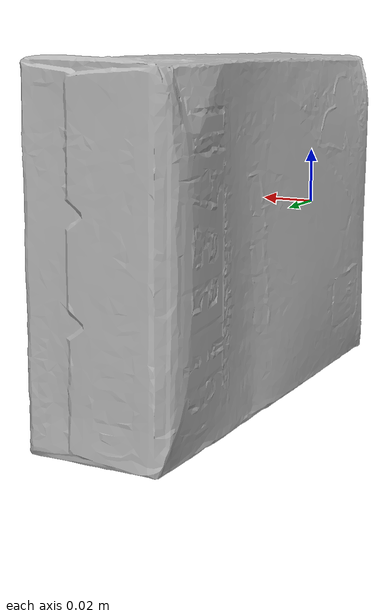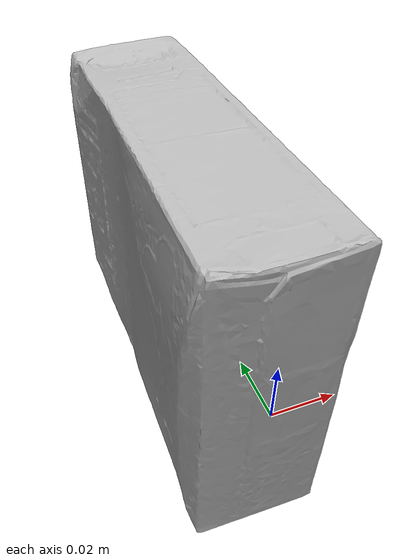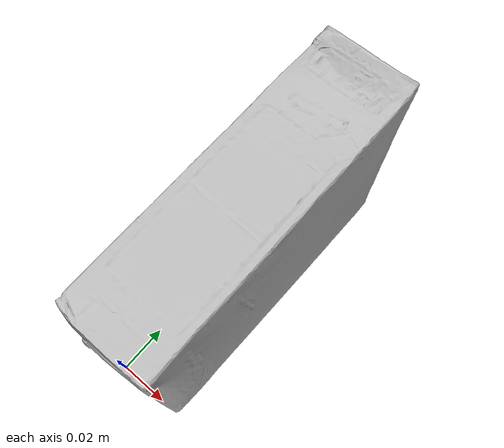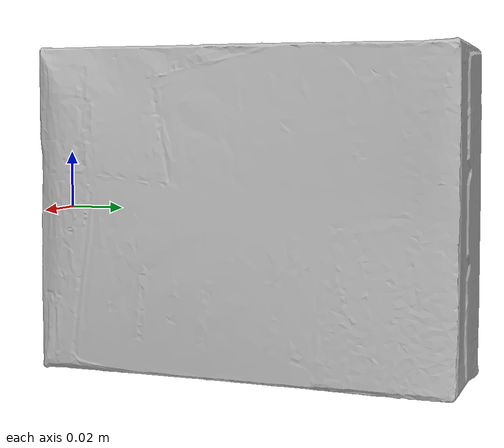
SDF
<?xml version='1.0'?>
<sdf version="1.4">
  <model name="cracker">
    <pose>0 0 0  0 0 0</pose>
    <static>0</static>
    <link name="body">
      <inertial>
          <mass>0.411</mass>
          <inertia>
            <ixx>0.002365</ixx>
            <ixy>0.000000</ixy>
            <ixz>0.000000</ixz>
            <iyy>0.001634</iyy>
            <iyz>0.000000</iyz>
            <izz>0.000978</izz>
          </inertia>
        </inertial>
      <collision name="collision">
        <geometry>
          <mesh>
			<uri>model://cracker/meshes/cracker.obj</uri>
			<scale>0.7 0.7 0.7</scale>
          </mesh>
        </geometry>
        <surface>
            <friction>
              <ode>
                <mu>100.0</mu>
                <mu2>100.0</mu2>
              </ode>
            </friction>
            <contact>
              <ode>
                <kp>1000000.0</kp>
                <kd>100.0</kd>
                <max_vel>1.0</max_vel>
                <min_depth>0.002</min_depth>
              </ode>
            </contact>
        </surface>
      </collision>
      <visual name="visual">
        <geometry>
          <mesh>
			<uri>model://cracker/meshes/cracker.obj</uri>
			<scale>0.7 0.7 0.7</scale>
          </mesh>
        </geometry>
      </visual>
      <velocity_decay>
        <linear>0.000000</linear>
        <angular>0.000000</angular>
      </velocity_decay>
      <self_collide>0</self_collide>
      <kinematic>0</kinematic>
      <gravity>1</gravity>
    </link>
  </model>
</sdf>
